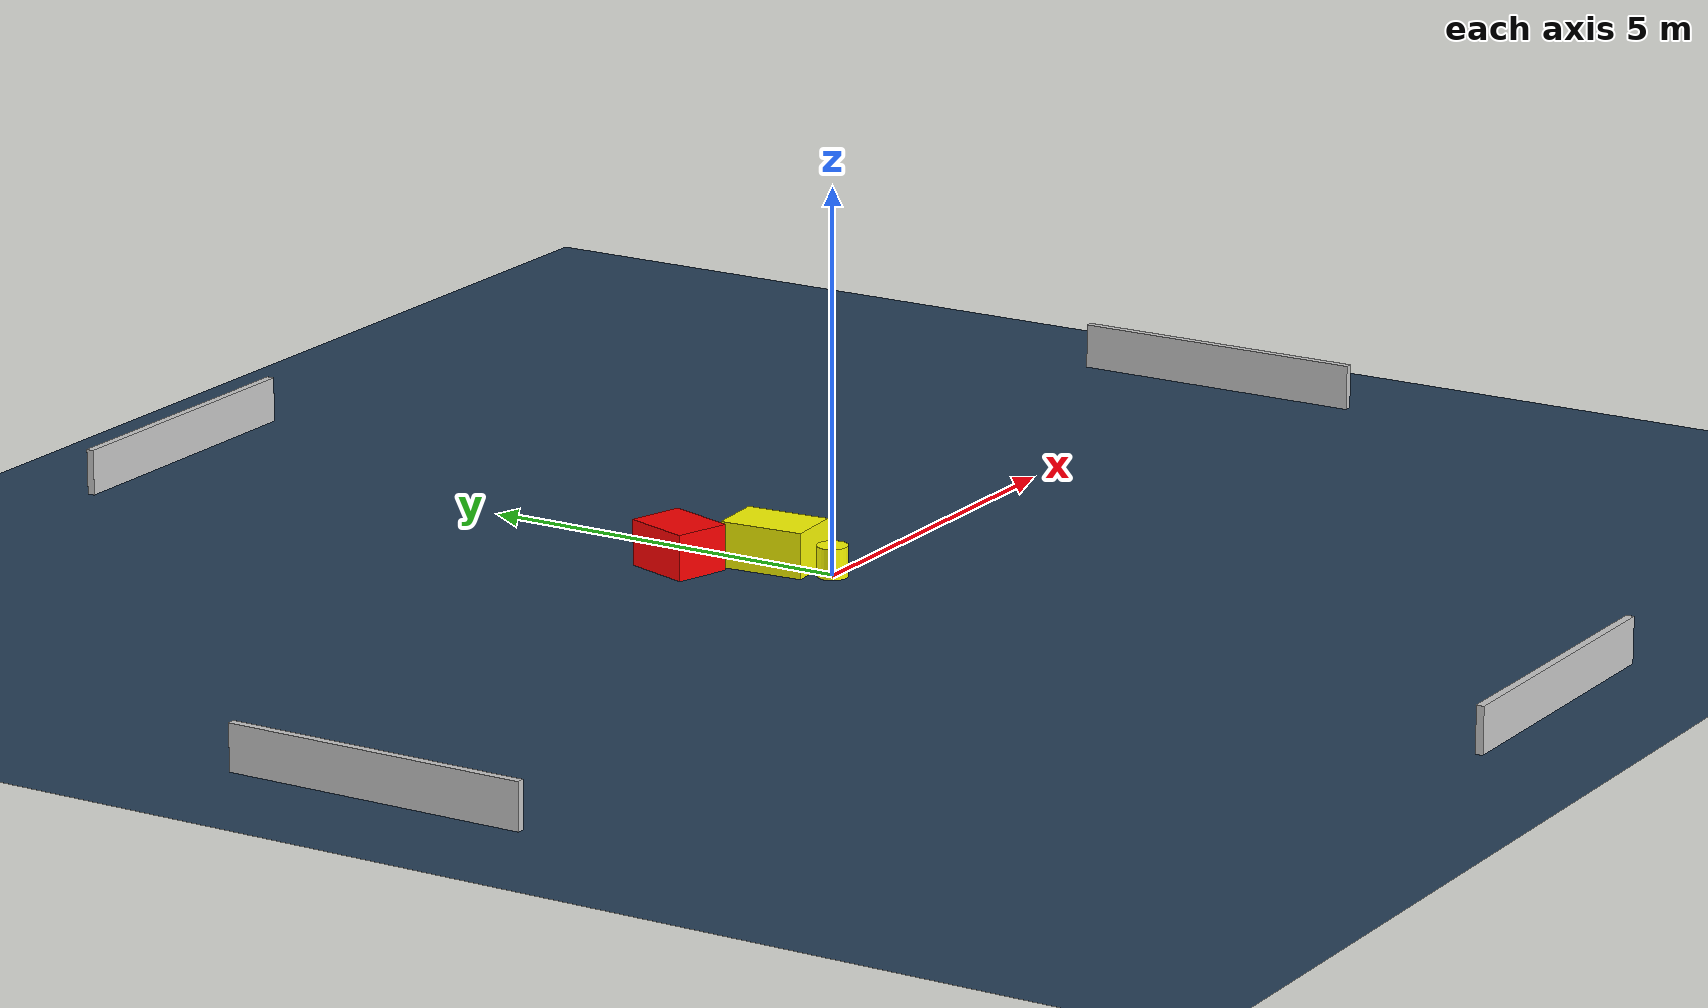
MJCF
<?xml version="1.0" ?>
<mujoco model="generated_environment">
  <option timestep="0.01" integrator="RK4" cone="elliptic"/>
  <default>
    <geom density="1"/>
  </default>
  <asset>
    <texture builtin="gradient" height="3072" name="skybox" rgb1="0.3 0.5 0.7" rgb2="0 0 0" type="skybox" width="512"/>
    <texture builtin="checker" height="300" name="groundplane" rgb1="0.2 0.3 0.4" rgb2="0.1 0.2 0.3" type="2d" width="300"/>
    <material name="groundplane" reflectance="0.2" texrepeat="5 5" texture="groundplane"/>
  </asset>
  <worldbody>
    <light dir="0 0 -1" directional="true" pos="0 0 1.5"/>
    <geom condim="3" friction="0.5 0.005 0.001" material="groundplane" name="floor" pos="0 0 0" size="0 0 0.05" type="plane"/>
    <body name="walls">
      <geom name="wall_1" condim="4" pos="-10.0 0.0 0.3" rgba="0.800000011920929 0.800000011920929 0.800000011920929 1.0" size="0.05 2.0 0.3" type="box"/>
      <geom name="wall_2" condim="4" pos="10.0 0.0 0.3" rgba="0.800000011920929 0.800000011920929 0.800000011920929 1.0" size="0.05 2.0 0.3" type="box"/>
      <geom name="wall_3" condim="4" pos="0.0 -10.0 0.3" rgba="0.800000011920929 0.800000011920929 0.800000011920929 1.0" size="2.0 0.05 0.3" type="box"/>
      <geom name="wall_4" condim="4" pos="0.0 10.0 0.3" rgba="0.800000011920929 0.800000011920929 0.800000011920929 1.0" size="2.0 0.05 0.3" type="box"/>
    </body>
    <body name="robot">
      <joint name="joint_x" type="slide" pos="0 0 0" axis="1 0 0"/>
      <joint name="joint_y" type="slide" pos="0 0 0" axis="0 1 0"/>
      <geom name="robot" type="cylinder" pos="0.0 0.0 0.2" size="0.2 0.2 0.0" mass="5.0" friction="1.0 0.005 0.0001" condim="4" rgba="1.0 1.0 0.0 1.0"/>
    </body>
    <body name="obstacle_1_movable">
      <geom name="obstacle_1_movable" condim="4" pos="-0.014951821556242079 0.839858452998571 0.3" euler="0 0 273.8505291424191" friction="0.0 0.005 0.001" rgba="1.0 1.0 0.0 1.0" size="0.5618253477979153 0.3669254391951026 0.3" type="box" mass="0.1"/>
      <joint type="free"/>
    </body>
    <body name="obstacle_2_static">
      <geom name="obstacle_2_static" condim="4" pos="-0.7070372629288363 1.8181037285398214 0.3" euler="0 0 72.1185961445237" friction="0.0 0.005 0.001" rgba="1.0 0.0 0.0 1.0" size="0.45980372430533145 0.36970069685335627 0.3" type="box"/>
    </body>
  </worldbody>
  <actuator>
    <motor name="actuator_x" joint="joint_x" gear="1" ctrlrange="-1 1"/>
    <motor name="actuator_y" joint="joint_y" gear="1" ctrlrange="-1 1"/>
  </actuator>
</mujoco>
